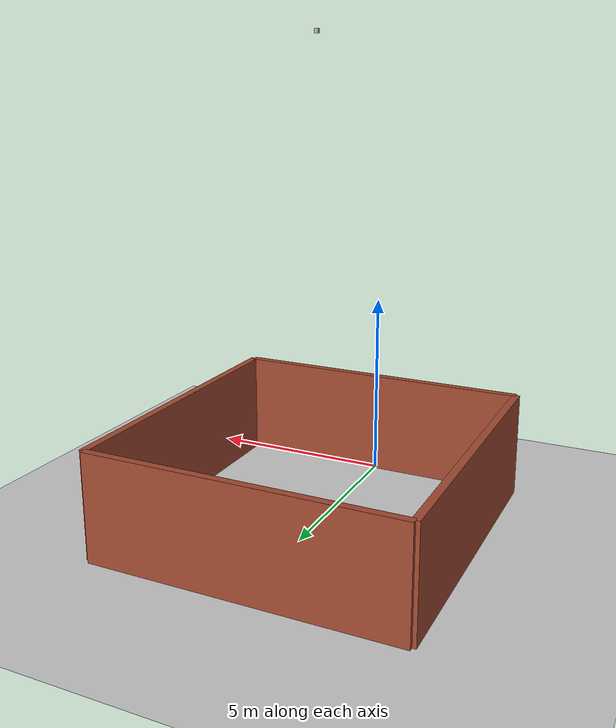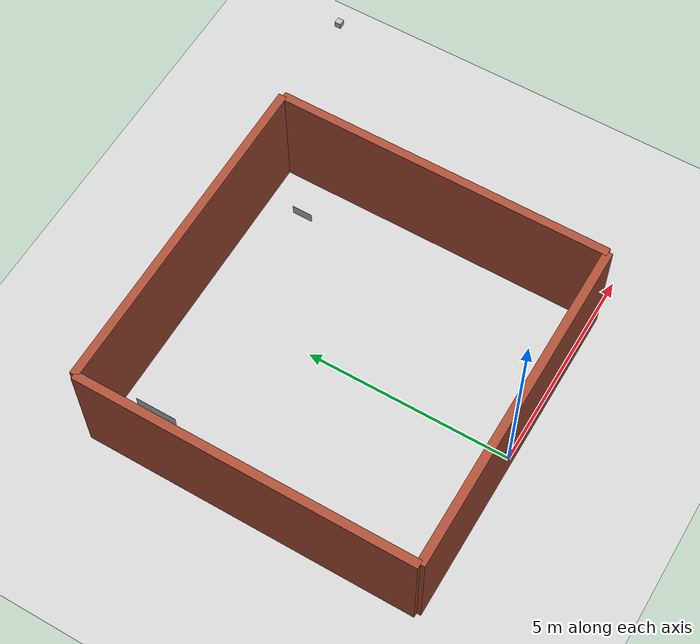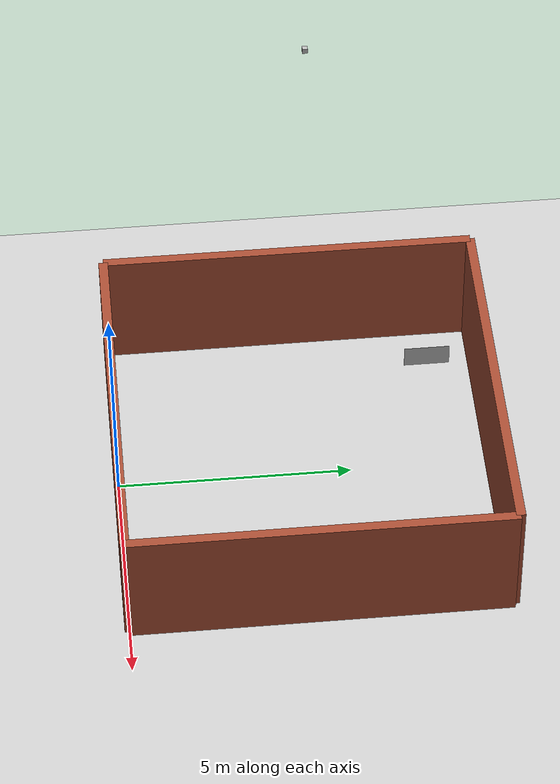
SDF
<?xml version="1.0"?>
<sdf version='1.6'>
  <world name='default'>

    <include>
      <uri>model://sun</uri>
    </include>

    <include>
      <uri>model://camera_world/walls</uri>
    </include>

    <include>
      <uri>model://camera_world/apriltag1</uri>
      <pose>3 7 0 0 0 0</pose>
    </include>

     <include>
      <uri>model://camera_world/apriltag2</uri>
      <pose>-3 7 0 0 0 0</pose>
    </include>

    <include>
      <uri>model://ground_plane</uri>
    </include>

    <include>
      <uri>model://camera_world/camera</uri>
      <pose>0 4 12 0 1.57 0</pose>
    </include>

  </world>
</sdf>

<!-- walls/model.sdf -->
<sdf version='1.6'>
  <model name='walls'>
  <static>1</static>
    <link name='Wall_0'>
    <pose frame=''>0 0 0 0 -0 0</pose>
      <self_collide>0</self_collide>
      <kinematic>0</kinematic>
      <visual name='Wall_0_Visual'>
        <pose frame=''>0 0 1.4 0 -0 0</pose>
        <geometry>
          <box>
            <size>8 0.2 2.8</size>
          </box>
        </geometry>
        <material>
          <script>
            <uri>file://media/materials/scripts/gazebo.material</uri>
            <name>Gazebo/Bricks</name>
          </script>
          <ambient>1 1 1 1</ambient>
          <diffuse>1 1 1 1</diffuse>
          <specular>0.2 0.2 0.2 1</specular>
          <emissive>0 0 0 1</emissive>
        </material>
        <cast_shadows>1</cast_shadows>
        <transparency>0</transparency>
      </visual>
      <collision name='Wall_0_Collision'>
        <laser_retro>0</laser_retro>
        <max_contacts>10</max_contacts>
        <pose frame=''>0 0 1.4 0 -0 0</pose>
        <geometry>
          <box>
            <size>8 0.2 2.8</size>
          </box>
        </geometry>
        <surface>
          <friction>
            <ode>
              <mu>1</mu>
              <mu2>1</mu2>
              <fdir1>0 0 0</fdir1>
              <slip1>0</slip1>
              <slip2>0</slip2>
            </ode>
            <torsional>
              <coefficient>1</coefficient>
              <patch_radius>0</patch_radius>
              <surface_radius>0</surface_radius>
              <use_patch_radius>1</use_patch_radius>
              <ode>
                <slip>0</slip>
              </ode>
            </torsional>
          </friction>
          <bounce>
            <restitution_coefficient>0</restitution_coefficient>
            <threshold>1e+06</threshold>
          </bounce>
          <contact>
            <collide_without_contact>0</collide_without_contact>
            <collide_without_contact_bitmask>1</collide_without_contact_bitmask>
            <collide_bitmask>1</collide_bitmask>
            <ode>
              <soft_cfm>0</soft_cfm>
              <soft_erp>0.2</soft_erp>
              <kp>1e+13</kp>
              <kd>1</kd>
              <max_vel>0.01</max_vel>
              <min_depth>0</min_depth>
            </ode>
            <bullet>
              <split_impulse>1</split_impulse>
              <split_impulse_penetration_threshold>-0.01</split_impulse_penetration_threshold>
              <soft_cfm>0</soft_cfm>
              <soft_erp>0.2</soft_erp>
              <kp>1e+13</kp>
              <kd>1</kd>
            </bullet>
          </contact>
        </surface>
      </collision>
    </link>

      <link name='Wall_1'>
      <self_collide>0</self_collide>
      <kinematic>0</kinematic>
      <pose frame=''>0 8 0 0 -0 0</pose>
      <visual name='Wall_1_Visual'>
        <pose frame=''>0 0 1.4 0 -0 0</pose>
        <geometry>
          <box>
            <size>8 0.2 2.8</size>
          </box>
        </geometry>
        <material>
          <script>
            <uri>file://media/materials/scripts/gazebo.material</uri>
            <name>Gazebo/Bricks</name>
          </script>
          <ambient>1 1 1 1</ambient>
          <diffuse>1 1 1 1</diffuse>
          <specular>0.2 0.2 0.2 1</specular>
          <emissive>0 0 0 1</emissive>
        </material>
        <cast_shadows>1</cast_shadows>
        <transparency>0</transparency>
      </visual>
      <collision name='Wall_1_Collision'>
        <laser_retro>0</laser_retro>
        <max_contacts>10</max_contacts>
        <pose frame=''>0 0 1.4 0 -0 0</pose>
        <geometry>
          <box>
            <size>8 0.2 2.8</size>
          </box>
        </geometry>
        <surface>
          <friction>
            <ode>
              <mu>1</mu>
              <mu2>1</mu2>
              <fdir1>0 0 0</fdir1>
              <slip1>0</slip1>
              <slip2>0</slip2>
            </ode>
            <torsional>
              <coefficient>1</coefficient>
              <patch_radius>0</patch_radius>
              <surface_radius>0</surface_radius>
              <use_patch_radius>1</use_patch_radius>
              <ode>
                <slip>0</slip>
              </ode>
            </torsional>
          </friction>
          <bounce>
            <restitution_coefficient>0</restitution_coefficient>
            <threshold>1e+06</threshold>
          </bounce>
          <contact>
            <collide_without_contact>0</collide_without_contact>
            <collide_without_contact_bitmask>1</collide_without_contact_bitmask>
            <collide_bitmask>1</collide_bitmask>
            <ode>
              <soft_cfm>0</soft_cfm>
              <soft_erp>0.2</soft_erp>
              <kp>1e+13</kp>
              <kd>1</kd>
              <max_vel>0.01</max_vel>
              <min_depth>0</min_depth>
            </ode>
            <bullet>
              <split_impulse>1</split_impulse>
              <split_impulse_penetration_threshold>-0.01</split_impulse_penetration_threshold>
              <soft_cfm>0</soft_cfm>
              <soft_erp>0.2</soft_erp>
              <kp>1e+13</kp>
              <kd>1</kd>
            </bullet>
          </contact>
        </surface>
      </collision>
    </link>

    <link name='Wall_2'>
      <self_collide>0</self_collide>
      <kinematic>0</kinematic>
      <pose frame=''>4 4 0 0 -0 1.57</pose>
      <visual name='Wall_2_Visual'>
        <pose frame=''>0 0 1.4 0 -0 0</pose>
        <geometry>
          <box>
            <size>8 0.2 2.8</size>
          </box>
        </geometry>
        <material>
          <script>
            <uri>file://media/materials/scripts/gazebo.material</uri>
            <name>Gazebo/Bricks</name>
          </script>
          <ambient>1 1 1 1</ambient>
          <diffuse>1 1 1 1</diffuse>
          <specular>0.2 0.2 0.2 1</specular>
          <emissive>0 0 0 1</emissive>
        </material>
        <cast_shadows>1</cast_shadows>
        <transparency>0</transparency>
      </visual>
      <collision name='Wall_2_Collision'>
        <laser_retro>0</laser_retro>
        <max_contacts>10</max_contacts>
        <pose frame=''>0 0 1.4 0 -0 0</pose>
        <geometry>
          <box>
            <size>8 0.2 2.8</size>
          </box>
        </geometry>
        <surface>
          <friction>
            <ode>
              <mu>1</mu>
              <mu2>1</mu2>
              <fdir1>0 0 0</fdir1>
              <slip1>0</slip1>
              <slip2>0</slip2>
            </ode>
            <torsional>
              <coefficient>1</coefficient>
              <patch_radius>0</patch_radius>
              <surface_radius>0</surface_radius>
              <use_patch_radius>1</use_patch_radius>
              <ode>
                <slip>0</slip>
              </ode>
            </torsional>
          </friction>
          <bounce>
            <restitution_coefficient>0</restitution_coefficient>
            <threshold>1e+06</threshold>
          </bounce>
          <contact>
            <collide_without_contact>0</collide_without_contact>
            <collide_without_contact_bitmask>1</collide_without_contact_bitmask>
            <collide_bitmask>1</collide_bitmask>
            <ode>
              <soft_cfm>0</soft_cfm>
              <soft_erp>0.2</soft_erp>
              <kp>1e+13</kp>
              <kd>1</kd>
              <max_vel>0.01</max_vel>
              <min_depth>0</min_depth>
            </ode>
            <bullet>
              <split_impulse>1</split_impulse>
              <split_impulse_penetration_threshold>-0.01</split_impulse_penetration_threshold>
              <soft_cfm>0</soft_cfm>
              <soft_erp>0.2</soft_erp>
              <kp>1e+13</kp>
              <kd>1</kd>
            </bullet>
          </contact>
        </surface>
      </collision>
    </link>

    <link name='Wall_3'>
      <self_collide>0</self_collide>
      <kinematic>0</kinematic>
      <pose frame=''>-4 4 0 0 -0 1.57</pose>
      <visual name='Wall_3_Visual'>
        <pose frame=''>0 0 1.4 0 -0 0</pose>
        <geometry>
          <box>
            <size>8 0.2 2.8</size>
          </box>
        </geometry>
        <material>
          <script>
            <uri>file://media/materials/scripts/gazebo.material</uri>
            <name>Gazebo/Bricks</name>
          </script>
          <ambient>1 1 1 1</ambient>
          <diffuse>1 1 1 1</diffuse>
          <specular>0.2 0.2 0.2 1</specular>
          <emissive>0 0 0 1</emissive>
        </material>
        <cast_shadows>1</cast_shadows>
        <transparency>0</transparency>
      </visual>
      <collision name='Wall_3_Collision'>
        <laser_retro>0</laser_retro>
        <max_contacts>10</max_contacts>
        <pose frame=''>0 0 1.4 0 -0 0</pose>
        <geometry>
          <box>
            <size>8 0.2 2.8</size>
          </box>
        </geometry>
        <surface>
          <friction>
            <ode>
              <mu>1</mu>
              <mu2>1</mu2>
              <fdir1>0 0 0</fdir1>
              <slip1>0</slip1>
              <slip2>0</slip2>
            </ode>
            <torsional>
              <coefficient>1</coefficient>
              <patch_radius>0</patch_radius>
              <surface_radius>0</surface_radius>
              <use_patch_radius>1</use_patch_radius>
              <ode>
                <slip>0</slip>
              </ode>
            </torsional>
          </friction>
          <bounce>
            <restitution_coefficient>0</restitution_coefficient>
            <threshold>1e+06</threshold>
          </bounce>
          <contact>
            <collide_without_contact>0</collide_without_contact>
            <collide_without_contact_bitmask>1</collide_without_contact_bitmask>
            <collide_bitmask>1</collide_bitmask>
            <ode>
              <soft_cfm>0</soft_cfm>
              <soft_erp>0.2</soft_erp>
              <kp>1e+13</kp>
              <kd>1</kd>
              <max_vel>0.01</max_vel>
              <min_depth>0</min_depth>
            </ode>
            <bullet>
              <split_impulse>1</split_impulse>
              <split_impulse_penetration_threshold>-0.01</split_impulse_penetration_threshold>
              <soft_cfm>0</soft_cfm>
              <soft_erp>0.2</soft_erp>
              <kp>1e+13</kp>
              <kd>1</kd>
            </bullet>
          </contact>
        </surface>
      </collision>
    </link>

  </model>
</sdf>

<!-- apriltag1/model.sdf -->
<sdf version='1.6'>
  <model name='apriltag1'>
    <link name='link'>
      <pose frame=''>0 0 0 0 0 0</pose>
      <self_collide>0</self_collide>
      <kinematic>0</kinematic>
      <gravity>0</gravity>
      <visual name='visual'>
        <geometry>
          <box>
            <size>0.001 0.5 0.5</size>
          </box>
        </geometry>
        <material>
          <script>
              <uri>model://apriltag1/materials/scripts/textures.material</uri>
              <uri>model://apriltag1/materials/textures/apriltag1.png</uri>
            <name>TexturedShape/Apriltag1</name>
          </script>
          <ambient>0.3 0.3 0.3 1</ambient>
          <diffuse>0.7 0.7 0.7 1</diffuse>
          <specular>0.01 0.01 0.01 1</specular>
          <emissive>0 0 0 1</emissive>
          <shader type='vertex'>
            <normal_map>__default__</normal_map>
          </shader>
        </material>
        <pose frame=''>0 0 0 0 -0 0</pose>
        <cast_shadows>1</cast_shadows>
        <transparency>0</transparency>
      </visual>
    </link>
    <static>1</static>
    <allow_auto_disable>1</allow_auto_disable>
  </model>
</sdf>

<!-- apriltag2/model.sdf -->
<sdf version='1.6'>
  <model name='apriltag2'>
    <link name='link'>
      <pose frame=''>0 0 0 0 0 0</pose>
      <inertial>
        <mass>0.0001</mass>
        <inertia>
          <ixx>0.166667</ixx>
          <ixy>0</ixy>
          <ixz>0</ixz>
          <iyy>0.166667</iyy>
          <iyz>0</iyz>
          <izz>0.166667</izz>
        </inertia>
        <pose frame=''>0 0 0 0 -0 0</pose>
      </inertial>
      <self_collide>0</self_collide>
      <kinematic>0</kinematic>
      <gravity>0</gravity>
      <visual name='visual'>
        <geometry>
          <box>
            <size>0.001 1 1</size>
          </box>
        </geometry>
        <material>
          <script>
            <uri>model://apriltag1/materials/scripts</uri>
            <uri>model://apriltag1/materials/textures</uri>
            <name>TexturedShape/Apriltag2</name>
          </script>
          <ambient>0.3 0.3 0.3 1</ambient>
          <diffuse>0.7 0.7 0.7 1</diffuse>
          <specular>0.01 0.01 0.01 1</specular>
          <emissive>0 0 0 1</emissive>
          <shader type='vertex'>
            <normal_map>__default__</normal_map>
          </shader>
        </material>
        <pose frame=''>0 0 0 0 -0 0</pose>
        <cast_shadows>0</cast_shadows>
        <transparency>0</transparency>
      </visual>
    </link>
    <static>1</static>
    <allow_auto_disable>1</allow_auto_disable>
  </model>
</sdf>

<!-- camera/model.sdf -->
<sdf version='1.6'>
  <model name='camera'>
  <static>1</static>
  <link name='camera_link'>
    <visual name='visual'>
      <geometry>
        <box>
          <size>0.1 0.1 0.1</size>
        </box>
      </geometry>
    </visual>
    <sensor type="camera" name="camera1">
      <update_rate>30.0</update_rate>
      <camera name="head">
        <horizontal_fov>1.3962634</horizontal_fov>
        <image>
          <width>800</width>
          <height>800</height>
          <format>R8G8B8</format>
        </image>
        <clip>
          <near>0.02</near>
          <far>300</far>
        </clip>
        <noise>
          <type>gaussian</type>
          <mean>0.0</mean>
          <stddev>0.007</stddev>
        </noise>
      </camera>
      <plugin name="camera_controller" filename="libgazebo_ros_camera.so">
        <alwaysOn>true</alwaysOn>
        <updateRate>60.0</updateRate>
        <cameraName>camera_world/camera1</cameraName>
        <imageTopicName>apriltag_tracking_camera</imageTopicName>
        <cameraInfoTopicName>camera_info</cameraInfoTopicName>
        <frameName>camera_link</frameName>
        <hackBaseline>0.07</hackBaseline>
        <distortionK1>0.0</distortionK1>
        <distortionK2>0.0</distortionK2>
        <distortionK3>0.0</distortionK3>
        <distortionT1>0.0</distortionT1>
        <distortionT2>0.0</distortionT2>
      </plugin>
    </sensor>
  </link>

  <joint name="camera_optical_joint" type="fixed">
     <parent>camera_link</parent>
     <child>camera_optical_frame</child>
     <pose frame=''>0 0 0 0 1.57 0</pose>
   </joint>

  <link name="camera_optical_frame"/>

  </model>
</sdf>
